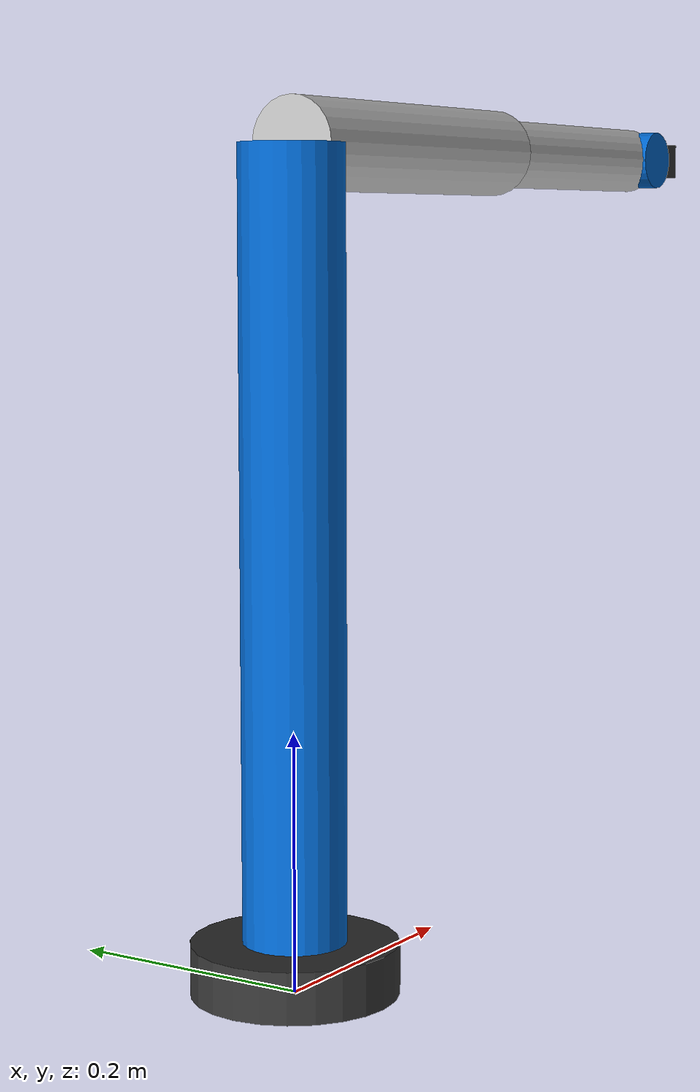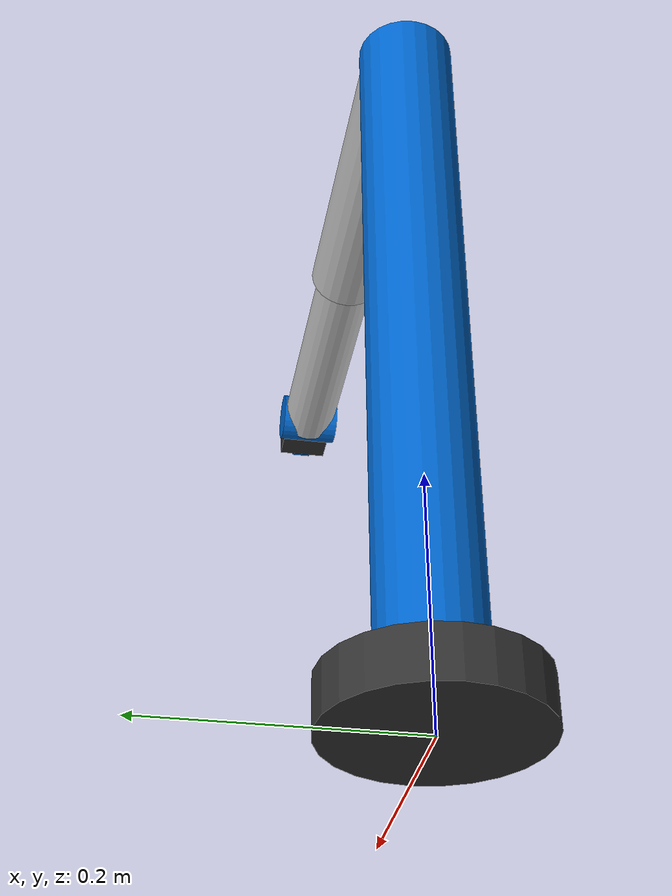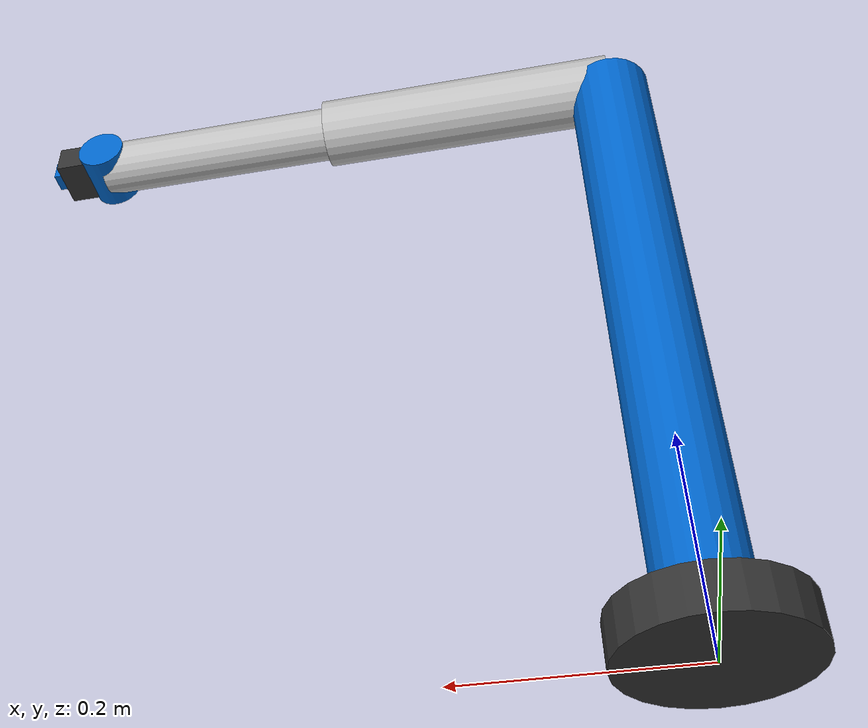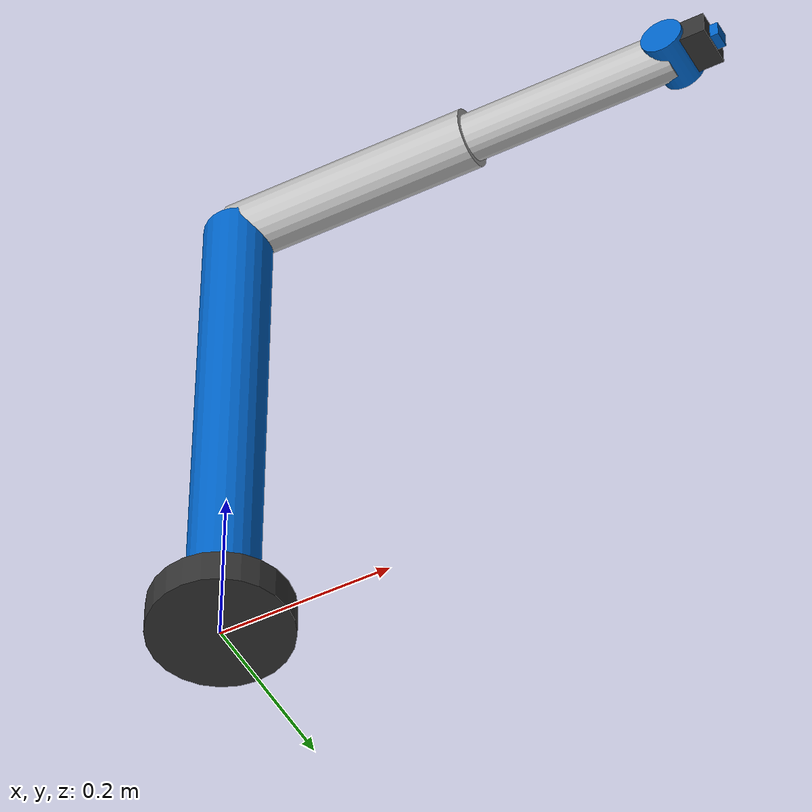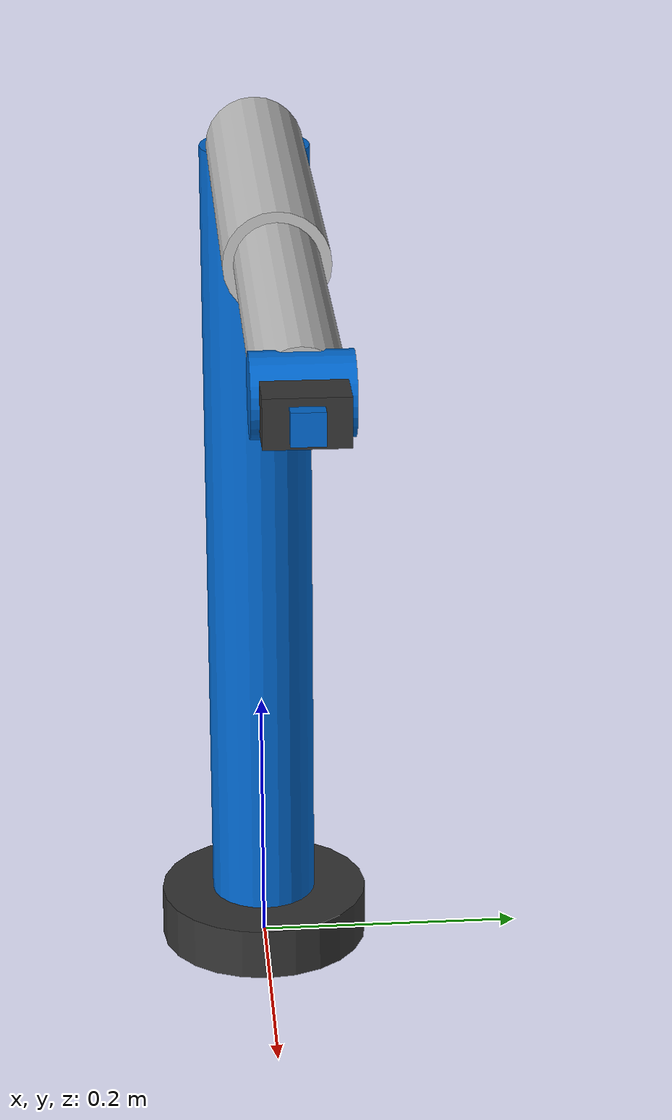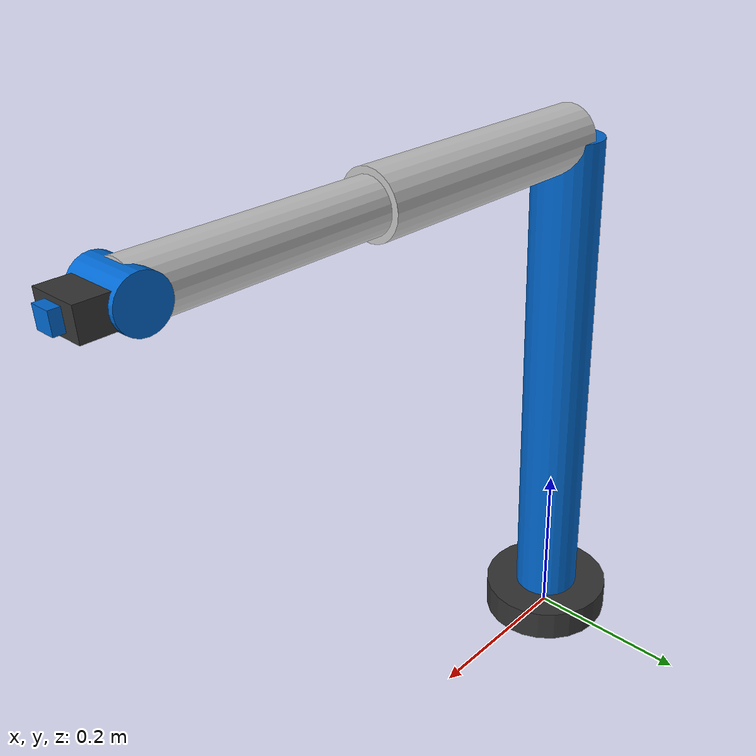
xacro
<?xml version="1.0"?>
<robot xmlns:xacro="http://www.ros.org/wiki/xacro" name="kitchenassist5">

  <!-- 1. PARAMETRELER VE BOYUTLAR                -->
  <xacro:property name="L1" value="0.60" /> <!-- d1: Omuz Link Dikey Boyu (m) -->
  <xacro:property name="L2" value="0.30" /> <!-- a2: Üst Kol Boyu (m) -->
  <xacro:property name="L3" value="0.25" /> <!-- a3: Önkol Boyu (m) -->
  <xacro:property name="d5" value="0.05" /> <!-- d5: Gripper Boyu (m) -->
  <xacro:property name="DEG2RAD" value="0.017453292519943295" />

  <!-- Malzemeler -->
  <material name="dark_gray"><color rgba="0.2 0.2 0.2 1.0"/></material>
  <material name="silver"><color rgba="0.75 0.75 0.75 1.0"/></material>
  <material name="accent_blue"><color rgba="0.0 0.4 0.8 1.0"/></material>

  <!-- 2. BASE LINK VE EKLENEN KİNETİK ZİNCİR     -->
  <link name="world"/>
  <!-- Robot tabanını dünyaya sabitle -->
  <joint name="world_to_base" type="fixed">
    <parent link="world"/>
    <child link="base_link"/>
    <origin xyz="0 0 0" rpy="0 0 0"/>
  </joint>

  <link name="base_link">
    <visual>
      <origin xyz="0 0 0.02" rpy="0 0 0"/>
      <geometry><cylinder radius="0.08" length="0.04"/></geometry>
      <material name="dark_gray"/>
    </visual>
    <collision>
      <origin xyz="0 0 0.02" rpy="0 0 0"/>
      <geometry><cylinder radius="0.08" length="0.04"/></geometry>
    </collision>
    <inertial>
      <mass value="1.0"/>
      <origin xyz="0 0 0.02" rpy="0 0 0"/>
      <inertia ixx="0.002" ixy="0" ixz="0" iyy="0.002" iyz="0" izz="0.003"/>
    </inertial>
  </link>

  <!-- JOINT 1 (J1 - Base Yaw) -->
  <joint name="joint1" type="revolute">
    <parent link="base_link"/>
    <child link="shoulder_link"/>
    <origin xyz="0 0 0.04" rpy="0 0 0"/>
    <axis xyz="0 0 1"/>
    <limit lower="${-90 * DEG2RAD}" upper="${90 * DEG2RAD}" effort="30.0" velocity="2.0"/>
  </joint>

  <link name="shoulder_link">
    <visual>
      <origin xyz="0 0 ${L1/2}" rpy="0 0 0"/>
      <geometry><cylinder radius="0.04" length="${L1}"/></geometry>
      <material name="accent_blue"/>
    </visual>
    <collision>
      <origin xyz="0 0 ${L1/2}" rpy="0 0 0"/>
      <geometry><cylinder radius="0.04" length="${L1}"/></geometry>
    </collision>
    <inertial>
      <mass value="1.2"/>
      <origin xyz="0 0 ${L1/2}" rpy="0 0 0"/>
      <inertia ixx="0.004" ixy="0" ixz="0" iyy="0.004" iyz="0" izz="0.002"/>
    </inertial>
  </link>

  <!-- JOINT 2 (J2 - Shoulder Pitch) -->
  <joint name="joint2" type="revolute">
    <parent link="shoulder_link"/>
    <child link="upper_arm_link"/>
    <origin xyz="0 0 ${L1}" rpy="${-90 * DEG2RAD} 0 0"/>
    <axis xyz="0 0 1"/>
    <limit lower="${-90 * DEG2RAD}" upper="${60 * DEG2RAD}" effort="50.0" velocity="2.0"/>
  </joint>

  <link name="upper_arm_link">
    <visual>
      <origin xyz="${L2/2} 0 0" rpy="0 ${90 * DEG2RAD} 0"/>
      <geometry><cylinder radius="0.035" length="${L2}"/></geometry>
      <material name="silver"/>
    </visual>
    <collision>
      <origin xyz="${L2/2} 0 0" rpy="0 ${90 * DEG2RAD} 0"/>
      <geometry><cylinder radius="0.035" length="${L2}"/></geometry>
    </collision>
    <inertial>
      <mass value="1.2"/>
      <origin xyz="${L2/2} 0 0" rpy="0 0 0"/>
      <inertia ixx="0.001" ixy="0" ixz="0" iyy="0.008" iyz="0" izz="0.008"/>
    </inertial>
  </link>

  <!-- JOINT 3 (J3 - Elbow Pitch) -->
  <joint name="joint3" type="revolute">
    <parent link="upper_arm_link"/>
    <child link="forearm_link"/>
    <origin xyz="${L2} 0 0" rpy="0 0 0"/>
    <axis xyz="0 0 1"/>
    <limit lower="${-60 * DEG2RAD}" upper="${30 * DEG2RAD}" effort="30.0" velocity="2.5"/>
  </joint>

  <link name="forearm_link">
    <visual>
      <origin xyz="${L3/2} 0 0" rpy="0 ${90 * DEG2RAD} 0"/>
      <geometry><cylinder radius="0.028" length="${L3}"/></geometry>
      <material name="silver"/>
    </visual>
    <collision>
      <origin xyz="${L3/2} 0 0" rpy="0 ${90 * DEG2RAD} 0"/>
      <geometry><cylinder radius="0.028" length="${L3}"/></geometry>
    </collision>
    <inertial>
      <mass value="0.9"/>
      <origin xyz="${L3/2} 0 0" rpy="0 0 0"/>
      <inertia ixx="0.0008" ixy="0" ixz="0" iyy="0.005" iyz="0" izz="0.005"/>
    </inertial>
  </link>

  <!-- JOINT 4 (J4 - Wrist Pitch) -->
  <joint name="joint4" type="revolute">
    <parent link="forearm_link"/>
    <child link="wrist_link"/>
    <origin xyz="${L3} 0 0" rpy="0 0 0"/>
    <axis xyz="0 0 1"/>
    <limit lower="${-90 * DEG2RAD}" upper="${90 * DEG2RAD}" effort="15.0" velocity="3.0"/>
  </joint>

  <link name="wrist_link">
    <visual>
      <origin xyz="0 0 0" rpy="0 0 0"/>
      <geometry><cylinder radius="0.025" length="0.06"/></geometry>
      <material name="accent_blue"/>
    </visual>
    <collision>
      <origin xyz="0 0 0" rpy="0 0 0"/>
      <geometry><cylinder radius="0.025" length="0.06"/></geometry>
    </collision>
    <inertial>
      <mass value="0.4"/>
      <origin xyz="0 0 0" rpy="0 0 0"/>
      <inertia ixx="0.0003" ixy="0" ixz="0" iyy="0.0003" iyz="0" izz="0.0003"/>
    </inertial>
  </link>

  <!-- JOINT 5 (J5 - Wrist Roll) -->
  <joint name="joint5" type="revolute">
    <parent link="wrist_link"/>
    <child link="gripper_link"/>
    <origin xyz="0 0 0" rpy="${-90 * DEG2RAD} 0 ${-90 * DEG2RAD}"/>
    <axis xyz="0 0 1"/>
    <limit lower="${-180 * DEG2RAD}" upper="${180 * DEG2RAD}" effort="10.0" velocity="3.5"/>
  </joint>

  <link name="gripper_link">
    <visual>
      <origin xyz="0 0 ${d5/2}" rpy="0 0 0"/>
      <geometry><box size="0.03 0.05 ${d5}"/></geometry>
      <material name="dark_gray"/>
    </visual>
    <collision>
      <origin xyz="0 0 ${d5/2}" rpy="0 0 0"/>
      <geometry><box size="0.03 0.05 ${d5}"/></geometry>
    </collision>
    <inertial>
      <mass value="0.3"/>
      <origin xyz="0 0 ${d5/2}" rpy="0 0 0"/>
      <inertia ixx="0.0001" ixy="0" ixz="0" iyy="0.0002" iyz="0" izz="0.0002"/>
    </inertial>
  </link>

  <!-- TOOL FRAME -->
  <joint name="tool_joint" type="fixed">
    <parent link="gripper_link"/>
    <child link="tool_frame"/>
    <origin xyz="0 0 ${d5}" rpy="0 0 0"/>
  </joint>
  <link name="tool_frame"/>

  <!-- 3. SENSÖR ENTEGRASYONU (Kamera Sensörü)    -->
  <!-- CAMERA JOINT -->
  <joint name="camera_joint" type="fixed">
    <parent link="gripper_link"/>
    <child link="camera_link"/>
    <origin
      xyz="0 0 ${d5}"
      rpy="${0} ${-90 * DEG2RAD} ${180 * DEG2RAD}"/>
  </joint>

  <link name="camera_link">
    <visual>
      <geometry>
        <box size="0.02 0.02 0.02"/>
      </geometry>
      <material name="accent_blue"/>
    </visual>
  </link>

  <!-- Kamera Sensörü (Plugin'siz, sadece Gazebo Sensörü) -->
  <gazebo reference="camera_link">
    <sensor type="camera" name="kitchen_camera">
      <update_rate>30.0</update_rate>
      <camera name="head">
        <horizontal_fov>1.7453293</horizontal_fov>
        <image>
          <width>640</width>
          <height>480</height>
          <format>R8G8B8</format>
        </image>
        <clip>
          <near>0.02</near>
          <far>300</far>
        </clip>
      </camera>
    </sensor>
  </gazebo>

  <!-- 4. ROS2_CONTROL & GAZEBO KONTROLÖR EKLENTİSİ -->
  <ros2_control name="GazeboSimSystem" type="system">
    <hardware>
      <!-- Sitedeki gibi modern Gazebo Sim eklentisini çağırıyoruz -->
      <plugin>gz_ros2_control/GazeboSimSystem</plugin>
    </hardware>

    <joint name="joint1">
      <command_interface name="position"/>
      <state_interface name="position"/>
      <state_interface name="velocity"/>
    </joint>

    <joint name="joint2">
      <command_interface name="position"/>
      <state_interface name="position"/>
      <state_interface name="velocity"/>
    </joint>

    <!-- Başlangıç değeri (15 derece = 0.2618 radyan) olan ekleminiz -->
    <joint name="joint3">
      <command_interface name="position"/>
      <state_interface name="position">

        <param name="initial_value">0.2618</param>

      </state_interface>
      <state_interface name="velocity"/>
    </joint>

    <joint name="joint4">
      <command_interface name="position"/>
      <state_interface name="position"/>
      <state_interface name="velocity"/>
    </joint>

    <joint name="joint5">
      <command_interface name="position"/>
      <state_interface name="position"/>
      <state_interface name="velocity"/>
    </joint>
  </ros2_control>

  <gazebo>
    <plugin name="gz_ros2_control::GazeboSimROS2ControlPlugin" filename="libgz_ros2_control-system">
      <!-- Kendi paketi ve kontrolcü dosyanıza yönlendirildi -->
      <parameters>$(find kitchenassist5_gazebo)/config/controllers.yaml</parameters>
    </plugin>
  </gazebo>

</robot>
